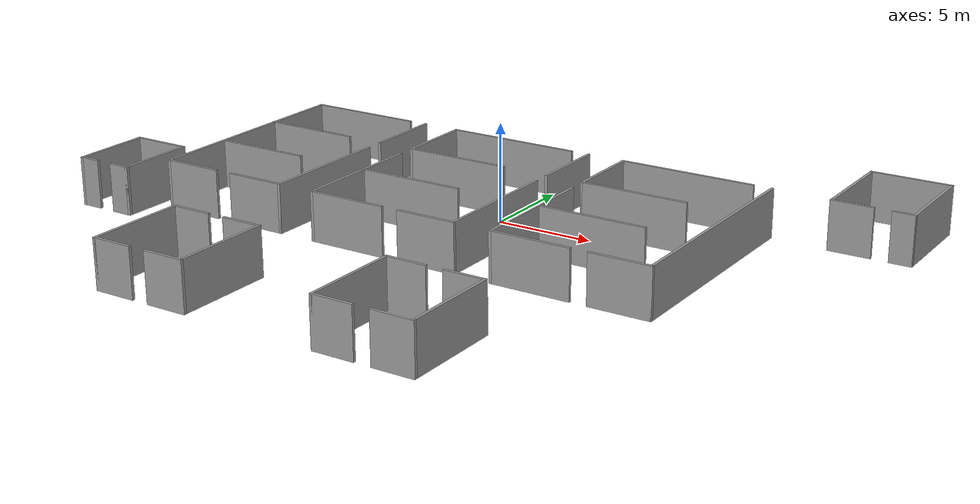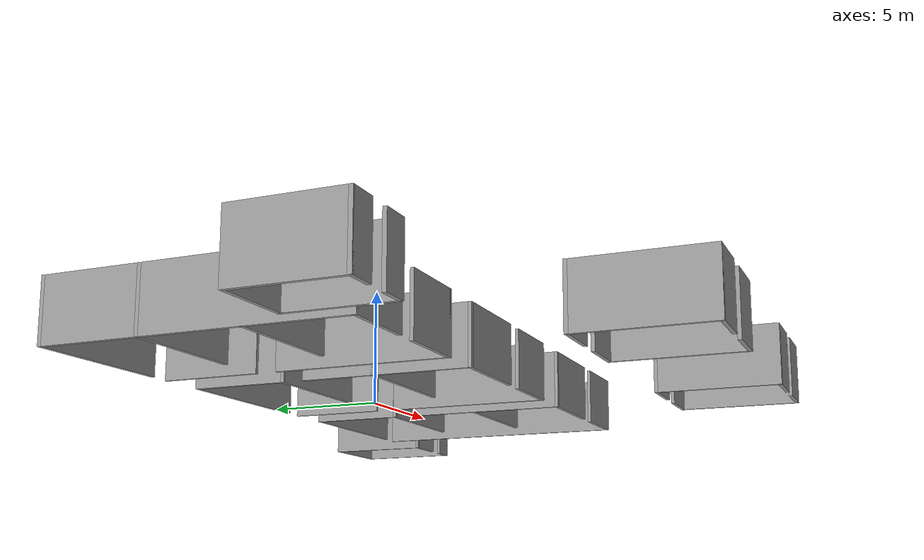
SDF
<?xml version='1.0'?>
<sdf version='1.6'>
  <model name='tents'>
    <pose frame=''>0 -3.5 0 0 -0 0</pose>
    <link name='Wall_10'>
      <collision name='Wall_10_Collision'>
        <geometry>
          <box>
            <size>2.15 0.15 2.5</size>
          </box>
        </geometry>
        <pose frame=''>0 0 1.25 0 -0 0</pose>
      </collision>
      <visual name='Wall_10_Visual'>
        <pose frame=''>0 0 1.25 0 -0 0</pose>
        <geometry>
          <box>
            <size>2.15 0.15 2.5</size>
          </box>
        </geometry>
        <material>
          <script>
            <uri>file://media/materials/scripts/gazebo.material</uri>
            <name>Gazebo/Grey</name>
          </script>
          <ambient>1 1 1 1</ambient>
        </material>
      </visual>
      <pose frame=''>-9 -8.5 0 0 -0 3.14159</pose>
    </link>
    <link name='Wall_11'>
      <collision name='Wall_11_Collision'>
        <geometry>
          <box>
            <size>5.15 0.15 2.5</size>
          </box>
        </geometry>
        <pose frame=''>0 0 1.25 0 -0 0</pose>
      </collision>
      <visual name='Wall_11_Visual'>
        <pose frame=''>0 0 1.25 0 -0 0</pose>
        <geometry>
          <box>
            <size>5.15 0.15 2.5</size>
          </box>
        </geometry>
        <material>
          <script>
            <uri>file://media/materials/scripts/gazebo.material</uri>
            <name>Gazebo/Grey</name>
          </script>
          <ambient>1 1 1 1</ambient>
        </material>
      </visual>
      <pose frame=''>-10 -11 0 0 0 -1.5708</pose>
    </link>
    <link name='Wall_12'>
      <collision name='Wall_12_Collision'>
        <geometry>
          <box>
            <size>2.15 0.15 2.5</size>
          </box>
        </geometry>
        <pose frame=''>0 0 1.25 0 -0 0</pose>
      </collision>
      <visual name='Wall_12_Visual'>
        <pose frame=''>0 0 1.25 0 -0 0</pose>
        <geometry>
          <box>
            <size>2.15 0.15 2.5</size>
          </box>
        </geometry>
        <material>
          <script>
            <uri>file://media/materials/scripts/gazebo.material</uri>
            <name>Gazebo/Grey</name>
          </script>
          <ambient>1 1 1 1</ambient>
        </material>
      </visual>
      <pose frame=''>-9 -13.5 0 0 -0 0</pose>
    </link>
    <link name='Wall_14'>
      <collision name='Wall_14_Collision'>
        <geometry>
          <box>
            <size>2.15 0.15 2.5</size>
          </box>
        </geometry>
        <pose frame=''>0 0 1.25 0 -0 0</pose>
      </collision>
      <visual name='Wall_14_Visual'>
        <pose frame=''>0 0 1.25 0 -0 0</pose>
        <geometry>
          <box>
            <size>2.15 0.15 2.5</size>
          </box>
        </geometry>
        <material>
          <script>
            <uri>file://media/materials/scripts/gazebo.material</uri>
            <name>Gazebo/Grey</name>
          </script>
          <ambient>1 1 1 1</ambient>
        </material>
      </visual>
      <pose frame=''>-6 -8.5 0 0 -0 0</pose>
    </link>
    <link name='Wall_15'>
      <collision name='Wall_15_Collision'>
        <geometry>
          <box>
            <size>5.15 0.15 2.5</size>
          </box>
        </geometry>
        <pose frame=''>0 0 1.25 0 -0 0</pose>
      </collision>
      <visual name='Wall_15_Visual'>
        <pose frame=''>0 0 1.25 0 -0 0</pose>
        <geometry>
          <box>
            <size>5.15 0.15 2.5</size>
          </box>
        </geometry>
        <material>
          <script>
            <uri>file://media/materials/scripts/gazebo.material</uri>
            <name>Gazebo/Grey</name>
          </script>
          <ambient>1 1 1 1</ambient>
        </material>
      </visual>
      <pose frame=''>-5 -11 0 0 0 -1.5708</pose>
    </link>
    <link name='Wall_16'>
      <collision name='Wall_16_Collision'>
        <geometry>
          <box>
            <size>2.15 0.15 2.5</size>
          </box>
        </geometry>
        <pose frame=''>0 0 1.25 0 -0 0</pose>
      </collision>
      <visual name='Wall_16_Visual'>
        <pose frame=''>0 0 1.25 0 -0 0</pose>
        <geometry>
          <box>
            <size>2.15 0.15 2.5</size>
          </box>
        </geometry>
        <material>
          <script>
            <uri>file://media/materials/scripts/gazebo.material</uri>
            <name>Gazebo/Grey</name>
          </script>
          <ambient>1 1 1 1</ambient>
        </material>
      </visual>
      <pose frame=''>-6 -13.5 0 0 -0 3.14159</pose>
    </link>
    <link name='Wall_2'>
      <collision name='Wall_2_Collision'>
        <geometry>
          <box>
            <size>2.15 0.15 2.5</size>
          </box>
        </geometry>
        <pose frame=''>0 0 1.25 0 -0 0</pose>
      </collision>
      <visual name='Wall_2_Visual'>
        <pose frame=''>0 0 1.25 0 -0 0</pose>
        <geometry>
          <box>
            <size>2.15 0.15 2.5</size>
          </box>
        </geometry>
        <material>
          <script>
            <uri>file://media/materials/scripts/gazebo.material</uri>
            <name>Gazebo/Grey</name>
          </script>
          <ambient>1 1 1 1</ambient>
        </material>
      </visual>
      <pose frame=''>16 8.5 0 0 -0 3.14159</pose>
    </link>
    <link name='Wall_20'>
      <collision name='Wall_20_Collision'>
        <geometry>
          <box>
            <size>2.15 0.15 2.5</size>
          </box>
        </geometry>
        <pose frame=''>0 0 1.25 0 -0 0</pose>
      </collision>
      <visual name='Wall_20_Visual'>
        <pose frame=''>0 0 1.25 0 -0 0</pose>
        <geometry>
          <box>
            <size>2.15 0.15 2.5</size>
          </box>
        </geometry>
        <material>
          <script>
            <uri>file://media/materials/scripts/gazebo.material</uri>
            <name>Gazebo/Grey</name>
          </script>
          <ambient>1 1 1 1</ambient>
        </material>
      </visual>
      <pose frame=''>3 -8.5 0 0 -0 3.14159</pose>
    </link>
    <link name='Wall_21'>
      <collision name='Wall_21_Collision'>
        <geometry>
          <box>
            <size>5.15 0.15 2.5</size>
          </box>
        </geometry>
        <pose frame=''>0 0 1.25 0 -0 0</pose>
      </collision>
      <visual name='Wall_21_Visual'>
        <pose frame=''>0 0 1.25 0 -0 0</pose>
        <geometry>
          <box>
            <size>5.15 0.15 2.5</size>
          </box>
        </geometry>
        <material>
          <script>
            <uri>file://media/materials/scripts/gazebo.material</uri>
            <name>Gazebo/Grey</name>
          </script>
          <ambient>1 1 1 1</ambient>
        </material>
      </visual>
      <pose frame=''>2 -11 0 0 0 -1.5708</pose>
    </link>
    <link name='Wall_22'>
      <collision name='Wall_22_Collision'>
        <geometry>
          <box>
            <size>2.15 0.15 2.5</size>
          </box>
        </geometry>
        <pose frame=''>0 0 1.25 0 -0 0</pose>
      </collision>
      <visual name='Wall_22_Visual'>
        <pose frame=''>0 0 1.25 0 -0 0</pose>
        <geometry>
          <box>
            <size>2.15 0.15 2.5</size>
          </box>
        </geometry>
        <material>
          <script>
            <uri>file://media/materials/scripts/gazebo.material</uri>
            <name>Gazebo/Grey</name>
          </script>
          <ambient>1 1 1 1</ambient>
        </material>
      </visual>
      <pose frame=''>3 -13.5 0 0 -0 0</pose>
    </link>
    <link name='Wall_24'>
      <collision name='Wall_24_Collision'>
        <geometry>
          <box>
            <size>2.15 0.15 2.5</size>
          </box>
        </geometry>
        <pose frame=''>0 0 1.25 0 -0 0</pose>
      </collision>
      <visual name='Wall_24_Visual'>
        <pose frame=''>0 0 1.25 0 -0 0</pose>
        <geometry>
          <box>
            <size>2.15 0.15 2.5</size>
          </box>
        </geometry>
        <material>
          <script>
            <uri>file://media/materials/scripts/gazebo.material</uri>
            <name>Gazebo/Grey</name>
          </script>
          <ambient>1 1 1 1</ambient>
        </material>
      </visual>
      <pose frame=''>6 -8.5 0 0 -0 0</pose>
    </link>
    <link name='Wall_25'>
      <collision name='Wall_25_Collision'>
        <geometry>
          <box>
            <size>5.15 0.15 2.5</size>
          </box>
        </geometry>
        <pose frame=''>0 0 1.25 0 -0 0</pose>
      </collision>
      <visual name='Wall_25_Visual'>
        <pose frame=''>0 0 1.25 0 -0 0</pose>
        <geometry>
          <box>
            <size>5.15 0.15 2.5</size>
          </box>
        </geometry>
        <material>
          <script>
            <uri>file://media/materials/scripts/gazebo.material</uri>
            <name>Gazebo/Grey</name>
          </script>
          <ambient>1 1 1 1</ambient>
        </material>
      </visual>
      <pose frame=''>7 -11 0 0 0 -1.5708</pose>
    </link>
    <link name='Wall_26'>
      <collision name='Wall_26_Collision'>
        <geometry>
          <box>
            <size>2.15 0.15 2.5</size>
          </box>
        </geometry>
        <pose frame=''>0 0 1.25 0 -0 0</pose>
      </collision>
      <visual name='Wall_26_Visual'>
        <pose frame=''>0 0 1.25 0 -0 0</pose>
        <geometry>
          <box>
            <size>2.15 0.15 2.5</size>
          </box>
        </geometry>
        <material>
          <script>
            <uri>file://media/materials/scripts/gazebo.material</uri>
            <name>Gazebo/Grey</name>
          </script>
          <ambient>1 1 1 1</ambient>
        </material>
      </visual>
      <pose frame=''>6 -13.5 0 0 -0 3.14159</pose>
    </link>
    <link name='Wall_3'>
      <collision name='Wall_3_Collision'>
        <geometry>
          <box>
            <size>5.15 0.15 2.5</size>
          </box>
        </geometry>
        <pose frame=''>0 0 1.25 0 -0 0</pose>
      </collision>
      <visual name='Wall_3_Visual'>
        <pose frame=''>0 0 1.25 0 -0 0</pose>
        <geometry>
          <box>
            <size>5.15 0.15 2.5</size>
          </box>
        </geometry>
        <material>
          <script>
            <uri>file://media/materials/scripts/gazebo.material</uri>
            <name>Gazebo/Grey</name>
          </script>
          <ambient>1 1 1 1</ambient>
        </material>
      </visual>
      <pose frame=''>15 11 0 0 -0 1.5708</pose>
    </link>
    <link name='Wall_33'>
      <collision name='Wall_33_Collision'>
        <geometry>
          <box>
            <size>1.15 0.15 2.5</size>
          </box>
        </geometry>
        <pose frame=''>0 0 1.25 0 -0 0</pose>
      </collision>
      <visual name='Wall_33_Visual'>
        <pose frame=''>0 0 1.25 0 -0 0</pose>
        <geometry>
          <box>
            <size>1.15 0.15 2.5</size>
          </box>
        </geometry>
        <material>
          <script>
            <uri>file://media/materials/scripts/gazebo.material</uri>
            <name>Gazebo/Grey</name>
          </script>
          <ambient>1 1 1 1</ambient>
        </material>
      </visual>
      <pose frame=''>-18.5 -5.5 0 0 -0 3.14159</pose>
    </link>
    <link name='Wall_34'>
      <collision name='Wall_34_Collision'>
        <geometry>
          <box>
            <size>4.15 0.15 2.5</size>
          </box>
        </geometry>
        <pose frame=''>0 0 1.25 0 -0 0</pose>
      </collision>
      <visual name='Wall_34_Visual'>
        <pose frame=''>0 0 1.25 0 -0 0</pose>
        <geometry>
          <box>
            <size>4.15 0.15 2.5</size>
          </box>
        </geometry>
        <material>
          <script>
            <uri>file://media/materials/scripts/gazebo.material</uri>
            <name>Gazebo/Grey</name>
          </script>
          <ambient>1 1 1 1</ambient>
        </material>
      </visual>
      <pose frame=''>-19 -3.5 0 0 -0 1.5708</pose>
    </link>
    <link name='Wall_35'>
      <collision name='Wall_35_Collision'>
        <geometry>
          <box>
            <size>3.15 0.15 2.5</size>
          </box>
        </geometry>
        <pose frame=''>0 0 1.25 0 -0 0</pose>
      </collision>
      <visual name='Wall_35_Visual'>
        <pose frame=''>0 0 1.25 0 -0 0</pose>
        <geometry>
          <box>
            <size>3.15 0.15 2.5</size>
          </box>
        </geometry>
        <material>
          <script>
            <uri>file://media/materials/scripts/gazebo.material</uri>
            <name>Gazebo/Grey</name>
          </script>
          <ambient>1 1 1 1</ambient>
        </material>
      </visual>
      <pose frame=''>-17.5 -1.5 0 0 -0 0</pose>
    </link>
    <link name='Wall_36'>
      <collision name='Wall_36_Collision'>
        <geometry>
          <box>
            <size>4.15 0.15 2.5</size>
          </box>
        </geometry>
        <pose frame=''>0 0 1.25 0 -0 0</pose>
      </collision>
      <visual name='Wall_36_Visual'>
        <pose frame=''>0 0 1.25 0 -0 0</pose>
        <geometry>
          <box>
            <size>4.15 0.15 2.5</size>
          </box>
        </geometry>
        <material>
          <script>
            <uri>file://media/materials/scripts/gazebo.material</uri>
            <name>Gazebo/Grey</name>
          </script>
          <ambient>1 1 1 1</ambient>
        </material>
      </visual>
      <pose frame=''>-16 -3.5 0 0 0 -1.5708</pose>
    </link>
    <link name='Wall_37'>
      <collision name='Wall_37_Collision'>
        <geometry>
          <box>
            <size>1.15 0.15 2.5</size>
          </box>
        </geometry>
        <pose frame=''>0 0 1.25 0 -0 0</pose>
      </collision>
      <visual name='Wall_37_Visual'>
        <pose frame=''>0 0 1.25 0 -0 0</pose>
        <geometry>
          <box>
            <size>1.15 0.15 2.5</size>
          </box>
        </geometry>
        <material>
          <script>
            <uri>file://media/materials/scripts/gazebo.material</uri>
            <name>Gazebo/Grey</name>
          </script>
          <ambient>1 1 1 1</ambient>
        </material>
      </visual>
      <pose frame=''>-16.5 -5.5 0 0 -0 3.14159</pose>
    </link>
    <link name='Wall_4'>
      <collision name='Wall_4_Collision'>
        <geometry>
          <box>
            <size>4.15 0.15 2.5</size>
          </box>
        </geometry>
        <pose frame=''>0 0 1.25 0 -0 0</pose>
      </collision>
      <visual name='Wall_4_Visual'>
        <pose frame=''>0 0 1.25 0 -0 0</pose>
        <geometry>
          <box>
            <size>4.15 0.15 2.5</size>
          </box>
        </geometry>
        <material>
          <script>
            <uri>file://media/materials/scripts/gazebo.material</uri>
            <name>Gazebo/Grey</name>
          </script>
          <ambient>1 1 1 1</ambient>
        </material>
      </visual>
      <pose frame=''>17 13.5 0 0 -0 0</pose>
    </link>
    <link name='Wall_42'>
      <collision name='Wall_42_Collision'>
        <geometry>
          <box>
            <size>6.15 0.15 2.5</size>
          </box>
        </geometry>
        <pose frame=''>0 0 1.25 0 -0 0</pose>
      </collision>
      <visual name='Wall_42_Visual'>
        <pose frame=''>0 0 1.25 0 -0 0</pose>
        <geometry>
          <box>
            <size>6.15 0.15 2.5</size>
          </box>
        </geometry>
        <material>
          <script>
            <uri>file://media/materials/scripts/gazebo.material</uri>
            <name>Gazebo/Grey</name>
          </script>
          <ambient>1 1 1 1</ambient>
        </material>
      </visual>
      <pose frame=''>-12 8.5 0 0 -0 3.14159</pose>
    </link>
    <link name='Wall_43'>
      <collision name='Wall_43_Collision'>
        <geometry>
          <box>
            <size>12.15 0.15 2.5</size>
          </box>
        </geometry>
        <pose frame=''>0 0 1.25 0 -0 0</pose>
      </collision>
      <visual name='Wall_43_Visual'>
        <pose frame=''>0 0 1.25 0 -0 0</pose>
        <geometry>
          <box>
            <size>12.15 0.15 2.5</size>
          </box>
        </geometry>
        <material>
          <script>
            <uri>file://media/materials/scripts/gazebo.material</uri>
            <name>Gazebo/Grey</name>
          </script>
          <ambient>1 1 1 1</ambient>
        </material>
      </visual>
      <pose frame=''>-15 2.5 0 0 0 -1.5708</pose>
    </link>
    <link name='Wall_44'>
      <collision name='Wall_44_Collision'>
        <geometry>
          <box>
            <size>3.15 0.15 2.5</size>
          </box>
        </geometry>
        <pose frame=''>0 0 1.25 0 -0 0</pose>
      </collision>
      <visual name='Wall_44_Visual'>
        <pose frame=''>0 0 1.25 0 -0 0</pose>
        <geometry>
          <box>
            <size>3.15 0.15 2.5</size>
          </box>
        </geometry>
        <material>
          <script>
            <uri>file://media/materials/scripts/gazebo.material</uri>
            <name>Gazebo/Grey</name>
          </script>
          <ambient>1 1 1 1</ambient>
        </material>
      </visual>
      <pose frame=''>-13.5 -3.5 0 0 -0 0</pose>
    </link>
    <link name='Wall_46'>
      <collision name='Wall_46_Collision'>
        <geometry>
          <box>
            <size>3.15 0.15 2.5</size>
          </box>
        </geometry>
        <pose frame=''>0 0 1.25 0 -0 0</pose>
      </collision>
      <visual name='Wall_46_Visual'>
        <pose frame=''>0 0 1.25 0 -0 0</pose>
        <geometry>
          <box>
            <size>3.15 0.15 2.5</size>
          </box>
        </geometry>
        <material>
          <script>
            <uri>file://media/materials/scripts/gazebo.material</uri>
            <name>Gazebo/Grey</name>
          </script>
          <ambient>1 1 1 1</ambient>
        </material>
      </visual>
      <pose frame=''>-9.5 -3.5 0 0 -0 0</pose>
    </link>
    <link name='Wall_47'>
      <collision name='Wall_47_Collision'>
        <geometry>
          <box>
            <size>7.15 0.15 2.5</size>
          </box>
        </geometry>
        <pose frame=''>0 0 1.25 0 -0 0</pose>
      </collision>
      <visual name='Wall_47_Visual'>
        <pose frame=''>0 0 1.25 0 -0 0</pose>
        <geometry>
          <box>
            <size>7.15 0.15 2.5</size>
          </box>
        </geometry>
        <material>
          <script>
            <uri>file://media/materials/scripts/gazebo.material</uri>
            <name>Gazebo/Grey</name>
          </script>
          <ambient>1 1 1 1</ambient>
        </material>
      </visual>
      <pose frame=''>-8 0 0 0 -0 1.5708</pose>
    </link>
    <link name='Wall_49'>
      <collision name='Wall_49_Collision'>
        <geometry>
          <box>
            <size>4.15 0.15 2.5</size>
          </box>
        </geometry>
        <pose frame=''>0 0 1.25 0 -0 0</pose>
      </collision>
      <visual name='Wall_49_Visual'>
        <pose frame=''>0 0 1.25 0 -0 0</pose>
        <geometry>
          <box>
            <size>4.15 0.15 2.5</size>
          </box>
        </geometry>
        <material>
          <script>
            <uri>file://media/materials/scripts/gazebo.material</uri>
            <name>Gazebo/Grey</name>
          </script>
          <ambient>1 1 1 1</ambient>
        </material>
      </visual>
      <pose frame=''>-8 6.5 0 0 0 -1.5708</pose>
    </link>
    <link name='Wall_5'>
      <collision name='Wall_5_Collision'>
        <geometry>
          <box>
            <size>5.15 0.15 2.5</size>
          </box>
        </geometry>
        <pose frame=''>0 0 1.25 0 -0 0</pose>
      </collision>
      <visual name='Wall_5_Visual'>
        <pose frame=''>0 0 1.25 0 -0 0</pose>
        <geometry>
          <box>
            <size>5.15 0.15 2.5</size>
          </box>
        </geometry>
        <material>
          <script>
            <uri>file://media/materials/scripts/gazebo.material</uri>
            <name>Gazebo/Grey</name>
          </script>
          <ambient>1 1 1 1</ambient>
        </material>
      </visual>
      <pose frame=''>19 11 0 0 0 -1.5708</pose>
    </link>
    <link name='Wall_51'>
      <collision name='Wall_51_Collision'>
        <geometry>
          <box>
            <size>5.15 0.15 2.5</size>
          </box>
        </geometry>
        <pose frame=''>0 0 1.25 0 -0 0</pose>
      </collision>
      <visual name='Wall_51_Visual'>
        <pose frame=''>0 0 1.25 0 -0 0</pose>
        <geometry>
          <box>
            <size>5.15 0.15 2.5</size>
          </box>
        </geometry>
        <material>
          <script>
            <uri>file://media/materials/scripts/gazebo.material</uri>
            <name>Gazebo/Grey</name>
          </script>
          <ambient>1 1 1 1</ambient>
        </material>
      </visual>
      <pose frame=''>-12.5 4.5 0 0 -0 0</pose>
    </link>
    <link name='Wall_53'>
      <collision name='Wall_53_Collision'>
        <geometry>
          <box>
            <size>5.15 0.15 2.5</size>
          </box>
        </geometry>
        <pose frame=''>0 0 1.25 0 -0 0</pose>
      </collision>
      <visual name='Wall_53_Visual'>
        <pose frame=''>0 0 1.25 0 -0 0</pose>
        <geometry>
          <box>
            <size>5.15 0.15 2.5</size>
          </box>
        </geometry>
        <material>
          <script>
            <uri>file://media/materials/scripts/gazebo.material</uri>
            <name>Gazebo/Grey</name>
          </script>
          <ambient>1 1 1 1</ambient>
        </material>
      </visual>
      <pose frame=''>-12.5 0.5 0 0 -0 0</pose>
    </link>
    <link name='Wall_6'>
      <collision name='Wall_6_Collision'>
        <geometry>
          <box>
            <size>1.15 0.15 2.5</size>
          </box>
        </geometry>
        <pose frame=''>0 0 1.25 0 -0 0</pose>
      </collision>
      <visual name='Wall_6_Visual'>
        <pose frame=''>0 0 1.25 0 -0 0</pose>
        <geometry>
          <box>
            <size>1.15 0.15 2.5</size>
          </box>
        </geometry>
        <material>
          <script>
            <uri>file://media/materials/scripts/gazebo.material</uri>
            <name>Gazebo/Grey</name>
          </script>
          <ambient>1 1 1 1</ambient>
        </material>
      </visual>
      <pose frame=''>18.5 8.5 0 0 -0 3.14159</pose>
    </link>
    <link name='Wall_65'>
      <collision name='Wall_65_Collision'>
        <geometry>
          <box>
            <size>4.15 0.15 2.5</size>
          </box>
        </geometry>
        <pose frame=''>0 0 1.25 0 -0 0</pose>
      </collision>
      <visual name='Wall_65_Visual'>
        <pose frame=''>0 0 1.25 0 -0 0</pose>
        <geometry>
          <box>
            <size>4.15 0.15 2.5</size>
          </box>
        </geometry>
        <material>
          <script>
            <uri>file://media/materials/scripts/gazebo.material</uri>
            <name>Gazebo/Grey</name>
          </script>
          <ambient>1 1 1 1</ambient>
        </material>
      </visual>
      <pose frame=''>-6 6.5 0 0 -0 1.5708</pose>
    </link>
    <link name='Wall_69'>
      <collision name='Wall_69_Collision'>
        <geometry>
          <box>
            <size>7.15 0.15 2.5</size>
          </box>
        </geometry>
        <pose frame=''>0 0 1.25 0 -0 0</pose>
      </collision>
      <visual name='Wall_69_Visual'>
        <pose frame=''>0 0 1.25 0 -0 0</pose>
        <geometry>
          <box>
            <size>7.15 0.15 2.5</size>
          </box>
        </geometry>
        <material>
          <script>
            <uri>file://media/materials/scripts/gazebo.material</uri>
            <name>Gazebo/Grey</name>
          </script>
          <ambient>1 1 1 1</ambient>
        </material>
      </visual>
      <pose frame=''>2 0 0 0 0 -1.5708</pose>
    </link>
    <link name='Wall_70'>
      <collision name='Wall_70_Collision'>
        <geometry>
          <box>
            <size>3.15 0.15 2.5</size>
          </box>
        </geometry>
        <pose frame=''>0 0 1.25 0 -0 0</pose>
      </collision>
      <visual name='Wall_70_Visual'>
        <pose frame=''>0 0 1.25 0 -0 0</pose>
        <geometry>
          <box>
            <size>3.15 0.15 2.5</size>
          </box>
        </geometry>
        <material>
          <script>
            <uri>file://media/materials/scripts/gazebo.material</uri>
            <name>Gazebo/Grey</name>
          </script>
          <ambient>1 1 1 1</ambient>
        </material>
      </visual>
      <pose frame=''>0.5 -3.5 0 0 -0 3.14159</pose>
    </link>
    <link name='Wall_72'>
      <collision name='Wall_72_Collision'>
        <geometry>
          <box>
            <size>4.15 0.15 2.5</size>
          </box>
        </geometry>
        <pose frame=''>0 0 1.25 0 -0 0</pose>
      </collision>
      <visual name='Wall_72_Visual'>
        <pose frame=''>0 0 1.25 0 -0 0</pose>
        <geometry>
          <box>
            <size>4.15 0.15 2.5</size>
          </box>
        </geometry>
        <material>
          <script>
            <uri>file://media/materials/scripts/gazebo.material</uri>
            <name>Gazebo/Grey</name>
          </script>
          <ambient>1 1 1 1</ambient>
        </material>
      </visual>
      <pose frame=''>-4 -3.5 0 0 -0 3.14159</pose>
    </link>
    <link name='Wall_73'>
      <collision name='Wall_73_Collision'>
        <geometry>
          <box>
            <size>7.15 0.15 2.5</size>
          </box>
        </geometry>
        <pose frame=''>0 0 1.25 0 -0 0</pose>
      </collision>
      <visual name='Wall_73_Visual'>
        <pose frame=''>0 0 1.25 0 -0 0</pose>
        <geometry>
          <box>
            <size>7.15 0.15 2.5</size>
          </box>
        </geometry>
        <material>
          <script>
            <uri>file://media/materials/scripts/gazebo.material</uri>
            <name>Gazebo/Grey</name>
          </script>
          <ambient>1 1 1 1</ambient>
        </material>
      </visual>
      <pose frame=''>-6 0 0 0 -0 1.5708</pose>
    </link>
    <link name='Wall_75'>
      <collision name='Wall_75_Collision'>
        <geometry>
          <box>
            <size>7.15 0.15 2.5</size>
          </box>
        </geometry>
        <pose frame=''>0 0 1.25 0 -0 0</pose>
      </collision>
      <visual name='Wall_75_Visual'>
        <pose frame=''>0 0 1.25 0 -0 0</pose>
        <geometry>
          <box>
            <size>7.15 0.15 2.5</size>
          </box>
        </geometry>
        <material>
          <script>
            <uri>file://media/materials/scripts/gazebo.material</uri>
            <name>Gazebo/Grey</name>
          </script>
          <ambient>1 1 1 1</ambient>
        </material>
      </visual>
      <pose frame=''>-2.5 8.5 0 0 -0 0</pose>
    </link>
    <link name='Wall_77'>
      <collision name='Wall_77_Collision'>
        <geometry>
          <box>
            <size>4.15 0.15 2.5</size>
          </box>
        </geometry>
        <pose frame=''>0 0 1.25 0 -0 0</pose>
      </collision>
      <visual name='Wall_77_Visual'>
        <pose frame=''>0 0 1.25 0 -0 0</pose>
        <geometry>
          <box>
            <size>4.15 0.15 2.5</size>
          </box>
        </geometry>
        <material>
          <script>
            <uri>file://media/materials/scripts/gazebo.material</uri>
            <name>Gazebo/Grey</name>
          </script>
          <ambient>1 1 1 1</ambient>
        </material>
      </visual>
      <pose frame=''>2 6.5 0 0 0 -1.5708</pose>
    </link>
    <link name='Wall_79'>
      <collision name='Wall_79_Collision'>
        <geometry>
          <box>
            <size>5.65 0.15 2.5</size>
          </box>
        </geometry>
        <pose frame=''>0 0 1.25 0 -0 0</pose>
      </collision>
      <visual name='Wall_79_Visual'>
        <pose frame=''>0 0 1.25 0 -0 0</pose>
        <geometry>
          <box>
            <size>5.65 0.15 2.5</size>
          </box>
        </geometry>
        <material>
          <script>
            <uri>file://media/materials/scripts/gazebo.material</uri>
            <name>Gazebo/Grey</name>
          </script>
          <ambient>1 1 1 1</ambient>
        </material>
      </visual>
      <pose frame=''>-3.25 4.5 0 0 -0 0</pose>
    </link>
    <link name='Wall_81'>
      <collision name='Wall_81_Collision'>
        <geometry>
          <box>
            <size>5.65 0.15 2.5</size>
          </box>
        </geometry>
        <pose frame=''>0 0 1.25 0 -0 0</pose>
      </collision>
      <visual name='Wall_81_Visual'>
        <pose frame=''>0 0 1.25 0 -0 0</pose>
        <geometry>
          <box>
            <size>5.65 0.15 2.5</size>
          </box>
        </geometry>
        <material>
          <script>
            <uri>file://media/materials/scripts/gazebo.material</uri>
            <name>Gazebo/Grey</name>
          </script>
          <ambient>1 1 1 1</ambient>
        </material>
      </visual>
      <pose frame=''>-3.25 0.5 0 0 -0 0</pose>
    </link>
    <link name='Wall_83'>
      <collision name='Wall_83_Collision'>
        <geometry>
          <box>
            <size>4.15 0.15 2.5</size>
          </box>
        </geometry>
        <pose frame=''>0 0 1.25 0 -0 0</pose>
      </collision>
      <visual name='Wall_83_Visual'>
        <pose frame=''>0 0 1.25 0 -0 0</pose>
        <geometry>
          <box>
            <size>4.15 0.15 2.5</size>
          </box>
        </geometry>
        <material>
          <script>
            <uri>file://media/materials/scripts/gazebo.material</uri>
            <name>Gazebo/Grey</name>
          </script>
          <ambient>1 1 1 1</ambient>
        </material>
      </visual>
      <pose frame=''>4 6.5 0 0 -0 1.5708</pose>
    </link>
    <link name='Wall_84'>
      <collision name='Wall_84_Collision'>
        <geometry>
          <box>
            <size>7.15 0.15 2.5</size>
          </box>
        </geometry>
        <pose frame=''>0 0 1.25 0 -0 0</pose>
      </collision>
      <visual name='Wall_84_Visual'>
        <pose frame=''>0 0 1.25 0 -0 0</pose>
        <geometry>
          <box>
            <size>7.15 0.15 2.5</size>
          </box>
        </geometry>
        <material>
          <script>
            <uri>file://media/materials/scripts/gazebo.material</uri>
            <name>Gazebo/Grey</name>
          </script>
          <ambient>1 1 1 1</ambient>
        </material>
      </visual>
      <pose frame=''>7.5 8.5 0 0 -0 0</pose>
    </link>
    <link name='Wall_86'>
      <collision name='Wall_86_Collision'>
        <geometry>
          <box>
            <size>12.15 0.15 2.5</size>
          </box>
        </geometry>
        <pose frame=''>0 0 1.25 0 -0 0</pose>
      </collision>
      <visual name='Wall_86_Visual'>
        <pose frame=''>0 0 1.25 0 -0 0</pose>
        <geometry>
          <box>
            <size>12.15 0.15 2.5</size>
          </box>
        </geometry>
        <material>
          <script>
            <uri>file://media/materials/scripts/gazebo.material</uri>
            <name>Gazebo/Grey</name>
          </script>
          <ambient>1 1 1 1</ambient>
        </material>
      </visual>
      <pose frame=''>12 2.5 0 0 0 -1.5708</pose>
    </link>
    <link name='Wall_87'>
      <collision name='Wall_87_Collision'>
        <geometry>
          <box>
            <size>3.15 0.15 2.5</size>
          </box>
        </geometry>
        <pose frame=''>0 0 1.25 0 -0 0</pose>
      </collision>
      <visual name='Wall_87_Visual'>
        <pose frame=''>0 0 1.25 0 -0 0</pose>
        <geometry>
          <box>
            <size>3.15 0.15 2.5</size>
          </box>
        </geometry>
        <material>
          <script>
            <uri>file://media/materials/scripts/gazebo.material</uri>
            <name>Gazebo/Grey</name>
          </script>
          <ambient>1 1 1 1</ambient>
        </material>
      </visual>
      <pose frame=''>10.5 -3.5 0 0 -0 3.14159</pose>
    </link>
    <link name='Wall_89'>
      <collision name='Wall_89_Collision'>
        <geometry>
          <box>
            <size>4.15 0.15 2.5</size>
          </box>
        </geometry>
        <pose frame=''>0 0 1.25 0 -0 0</pose>
      </collision>
      <visual name='Wall_89_Visual'>
        <pose frame=''>0 0 1.25 0 -0 0</pose>
        <geometry>
          <box>
            <size>4.15 0.15 2.5</size>
          </box>
        </geometry>
        <material>
          <script>
            <uri>file://media/materials/scripts/gazebo.material</uri>
            <name>Gazebo/Grey</name>
          </script>
          <ambient>1 1 1 1</ambient>
        </material>
      </visual>
      <pose frame=''>6 -3.5 0 0 -0 3.14159</pose>
    </link>
    <link name='Wall_90'>
      <collision name='Wall_90_Collision'>
        <geometry>
          <box>
            <size>7.15 0.15 2.5</size>
          </box>
        </geometry>
        <pose frame=''>0 0 1.25 0 -0 0</pose>
      </collision>
      <visual name='Wall_90_Visual'>
        <pose frame=''>0 0 1.25 0 -0 0</pose>
        <geometry>
          <box>
            <size>7.15 0.15 2.5</size>
          </box>
        </geometry>
        <material>
          <script>
            <uri>file://media/materials/scripts/gazebo.material</uri>
            <name>Gazebo/Grey</name>
          </script>
          <ambient>1 1 1 1</ambient>
        </material>
      </visual>
      <pose frame=''>4 0 0 0 -0 1.5708</pose>
    </link>
    <link name='Wall_92'>
      <collision name='Wall_92_Collision'>
        <geometry>
          <box>
            <size>5.65 0.15 2.5</size>
          </box>
        </geometry>
        <pose frame=''>0 0 1.25 0 -0 0</pose>
      </collision>
      <visual name='Wall_92_Visual'>
        <pose frame=''>0 0 1.25 0 -0 0</pose>
        <geometry>
          <box>
            <size>5.65 0.15 2.5</size>
          </box>
        </geometry>
        <material>
          <script>
            <uri>file://media/materials/scripts/gazebo.material</uri>
            <name>Gazebo/Grey</name>
          </script>
          <ambient>1 1 1 1</ambient>
        </material>
      </visual>
      <pose frame=''>6.75 4.5 0 0 -0 0</pose>
    </link>
    <link name='Wall_94'>
      <collision name='Wall_94_Collision'>
        <geometry>
          <box>
            <size>5.65 0.15 2.5</size>
          </box>
        </geometry>
        <pose frame=''>0 0 1.25 0 -0 0</pose>
      </collision>
      <visual name='Wall_94_Visual'>
        <pose frame=''>0 0 1.25 0 -0 0</pose>
        <geometry>
          <box>
            <size>5.65 0.15 2.5</size>
          </box>
        </geometry>
        <material>
          <script>
            <uri>file://media/materials/scripts/gazebo.material</uri>
            <name>Gazebo/Grey</name>
          </script>
          <ambient>1 1 1 1</ambient>
        </material>
      </visual>
      <pose frame=''>6.75 0.5 0 0 -0 0</pose>
    </link>
    <static>1</static>
  </model>
</sdf>
